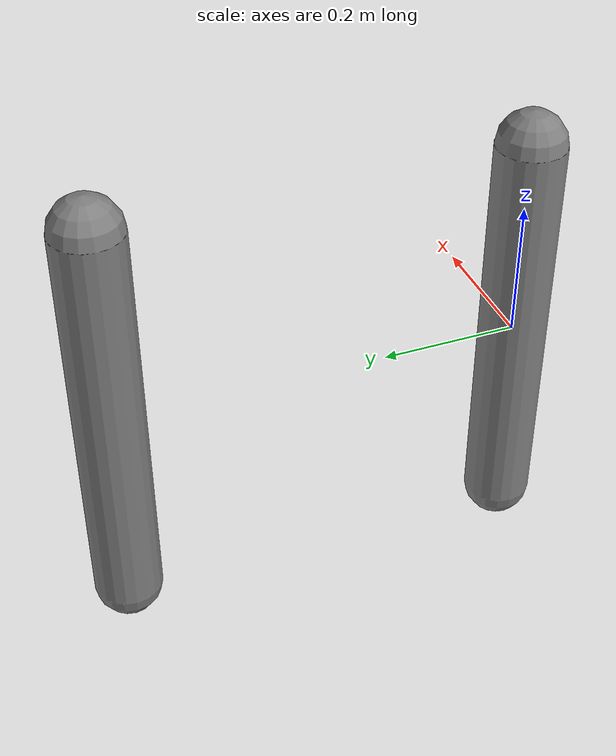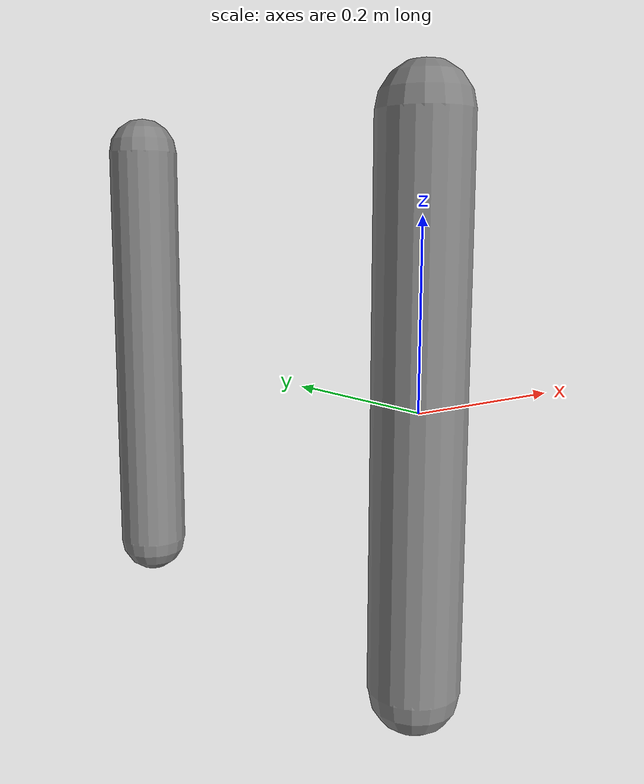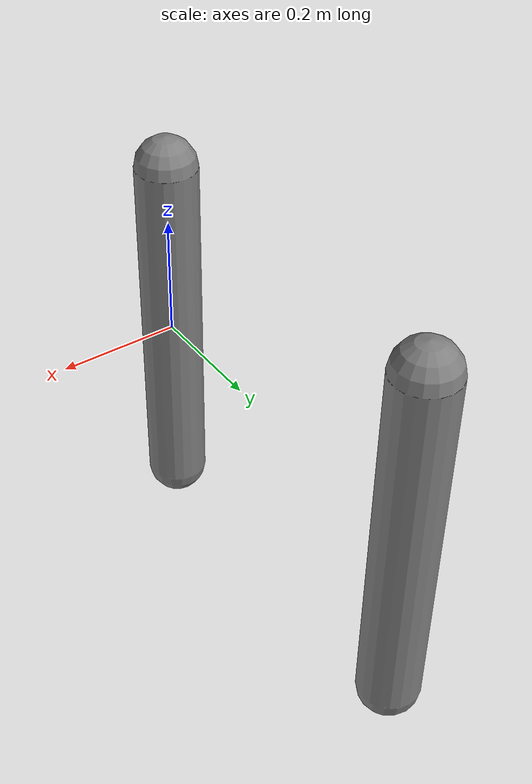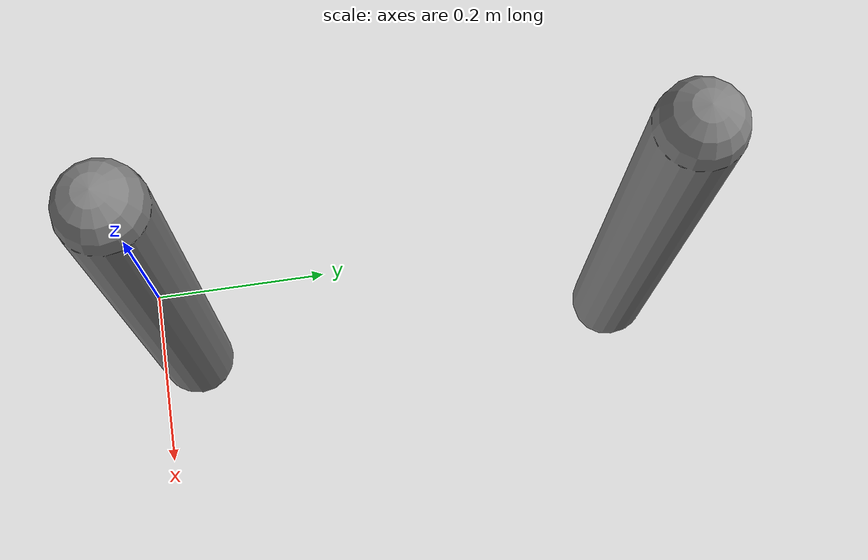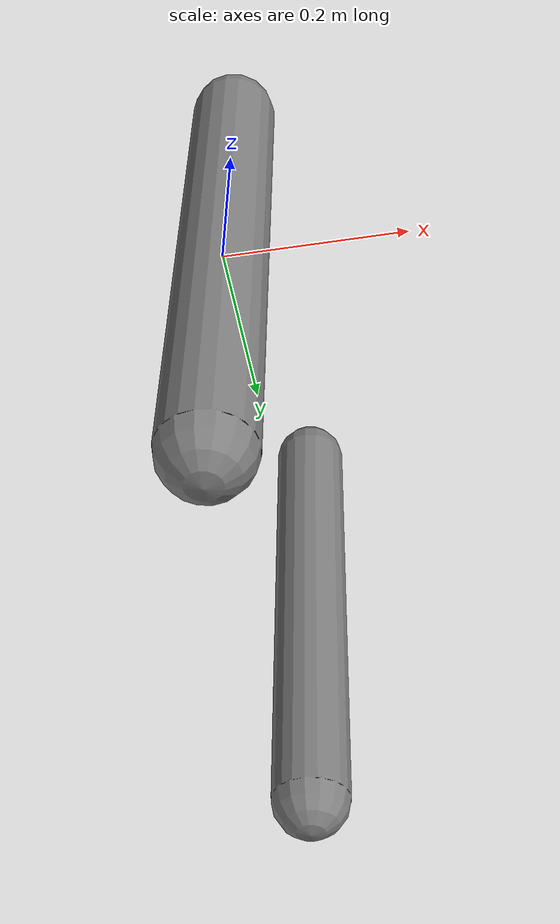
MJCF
<mujoco model="pgs_test">
            <option gravity="0 0 -9.81" timestep="0.002" solver="PGS"
                    iterations="100" tolerance="1e-8"/>
            <worldbody>
                <body name="arm1" pos="0 0 0">
                    <joint name="hinge1" type="hinge" axis="0 0 1"/>
                    <geom type="capsule" size="0.05 0.3" mass="1.0"/>
                    <body name="arm2" pos="0 0.6 0">
                        <joint name="hinge2" type="hinge" axis="0 0 1"/>
                        <geom type="capsule" size="0.05 0.3" mass="1.0"/>
                    </body>
                </body>
            </worldbody>
            <equality>
                <joint joint1="hinge1" joint2="hinge2" polycoef="0 0.5 0 0 0"/>
            </equality>
        </mujoco>
